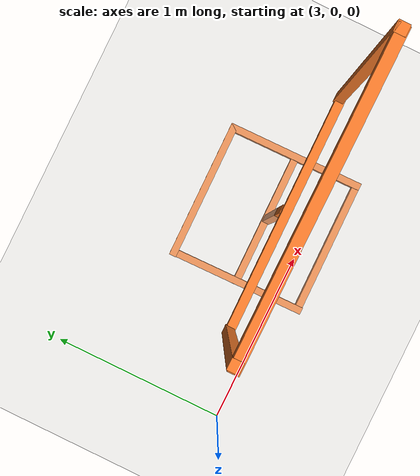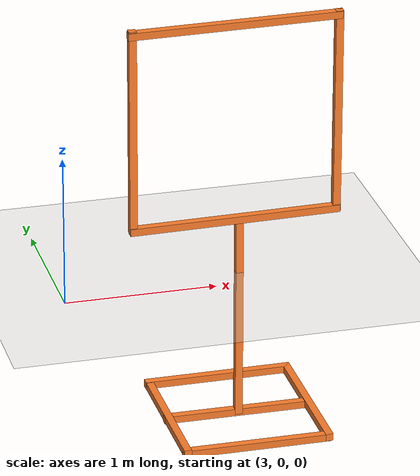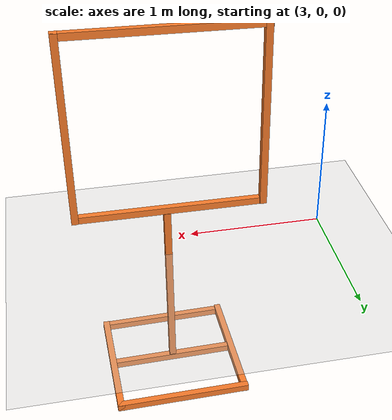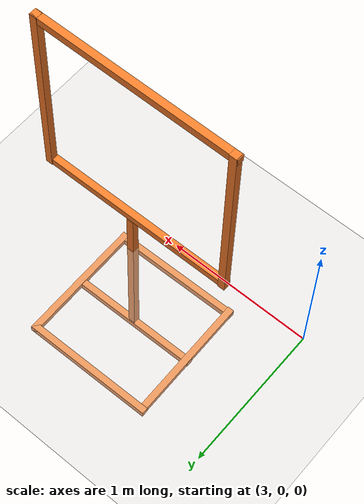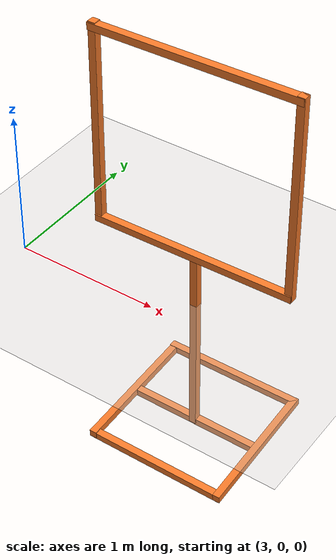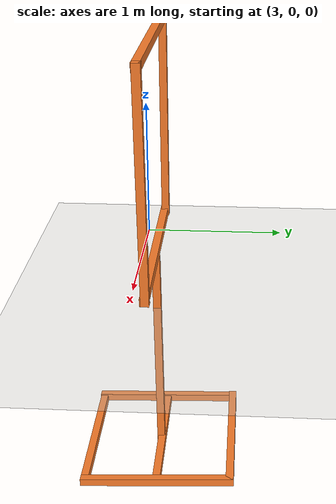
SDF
<sdf version="1.6">
 <world name="default">
  <model name="ground_plane">
   <static>1</static>
   <link name="link">
    <collision name="collision">
     <geometry><plane><normal>0 0 1</normal><size>100 100</size></plane></geometry>
     <surface><friction><ode><mu>100</mu><mu2>50</mu2></ode></friction></surface>
    </collision>
    <visual name="visual">
     <cast_shadows>0</cast_shadows>
     <geometry><plane><normal>0 0 1</normal><size>100 100</size></plane></geometry>
     <material>
      <script><uri>file://media/materials/scripts/gazebo.material</uri><name>Gazebo/Grey</name></script>
     </material>
    </visual>
    <velocity_decay><linear>0</linear><angular>0</angular></velocity_decay>
   </link>
  </model>
  <model name="closed_gate_clone">
   <link name="link">
    <inertial>
     <mass>1</mass>
     <inertia>
      <ixx>0.166667</ixx>
      <ixy>0</ixy>
      <ixz>0</ixz>
      <iyy>0.166667</iyy>
      <iyz>0</iyz>
      <izz>0.166667</izz>
     </inertia>
    </inertial>
    <pose>0.404756 -0.715724 1.41623 0 -0 0</pose>
    <visual name="visual">
     <geometry><box><size>0.05 0.05 1.4</size></box></geometry>
     <material>
      <script><name>Gazebo/Grey</name><uri>file://media/materials/scripts/gazebo.material</uri></script>
      <shader type="vertex"><normal_map>__default__</normal_map></shader>
      <ambient>0.976 0.484 0.164 1</ambient>
      <diffuse>0.976 0.484 0.164 1</diffuse>
      <specular>0.01 0.01 0.01 1</specular>
      <emissive>0 0 0 1</emissive>
     </material>
    </visual>
    <collision name="collision">
     <geometry><box><size>0.05 0.05 1.4</size></box></geometry>
     <surface>
      <friction>
       <ode><mu>1</mu><mu2>1</mu2><fdir1>0 0 0</fdir1><slip1>0</slip1><slip2>0</slip2></ode>
       <torsional>
        <coefficient>1</coefficient>
        <patch_radius>0</patch_radius>
        <surface_radius>0</surface_radius>
        <use_patch_radius>1</use_patch_radius>
        <ode><slip>0</slip></ode>
       </torsional>
      </friction>
      <bounce><restitution_coefficient>0</restitution_coefficient><threshold>1e+06</threshold></bounce>
      <contact>
       <collide_without_contact>0</collide_without_contact>
       <collide_without_contact_bitmask>1</collide_without_contact_bitmask>
       <collide_bitmask>1</collide_bitmask>
       <ode>
        <soft_cfm>0</soft_cfm>
        <soft_erp>0.2</soft_erp>
        <kp>1e+13</kp>
        <kd>1</kd>
        <max_vel>0.01</max_vel>
        <min_depth>0</min_depth>
       </ode>
       <bullet>
        <split_impulse>1</split_impulse>
        <split_impulse_penetration_threshold>-0.01</split_impulse_penetration_threshold>
        <soft_cfm>0</soft_cfm>
        <soft_erp>0.2</soft_erp>
        <kp>1e+13</kp>
        <kd>1</kd>
       </bullet>
      </contact>
     </surface>
    </collision>
   </link>
   <link name="link_clone_0_clone_0">
    <inertial>
     <mass>1</mass>
     <inertia>
      <ixx>0.166667</ixx>
      <ixy>0</ixy>
      <ixz>0</ixz>
      <iyy>0.166667</iyy>
      <iyz>0</iyz>
      <izz>0.166667</izz>
     </inertia>
    </inertial>
    <pose>1.11096 -0.693594 -0.667388 -1.57955 0.044957 -1.56415</pose>
    <visual name="visual">
     <geometry><box><size>0.05 0.05 1</size></box></geometry>
     <material>
      <script><name>Gazebo/Grey</name><uri>file://media/materials/scripts/gazebo.material</uri></script>
      <shader type="vertex"><normal_map>__default__</normal_map></shader>
      <ambient>0.976 0.484 0.164 1</ambient>
      <diffuse>0.976 0.484 0.164 1</diffuse>
      <specular>0.01 0.01 0.01 1</specular>
      <emissive>0 0 0 1</emissive>
     </material>
    </visual>
    <collision name="collision">
     <geometry><box><size>0.05 0.05 1</size></box></geometry>
     <surface>
      <friction>
       <ode><mu>1</mu><mu2>1</mu2><fdir1>0 0 0</fdir1><slip1>0</slip1><slip2>0</slip2></ode>
       <torsional>
        <coefficient>1</coefficient>
        <patch_radius>0</patch_radius>
        <surface_radius>0</surface_radius>
        <use_patch_radius>1</use_patch_radius>
        <ode><slip>0</slip></ode>
       </torsional>
      </friction>
      <bounce><restitution_coefficient>0</restitution_coefficient><threshold>1e+06</threshold></bounce>
      <contact>
       <collide_without_contact>0</collide_without_contact>
       <collide_without_contact_bitmask>1</collide_without_contact_bitmask>
       <collide_bitmask>1</collide_bitmask>
       <ode>
        <soft_cfm>0</soft_cfm>
        <soft_erp>0.2</soft_erp>
        <kp>1e+13</kp>
        <kd>1</kd>
        <max_vel>0.01</max_vel>
        <min_depth>0</min_depth>
       </ode>
       <bullet>
        <split_impulse>1</split_impulse>
        <split_impulse_penetration_threshold>-0.01</split_impulse_penetration_threshold>
        <soft_cfm>0</soft_cfm>
        <soft_erp>0.2</soft_erp>
        <kp>1e+13</kp>
        <kd>1</kd>
       </bullet>
      </contact>
     </surface>
    </collision>
   </link>
   <link name="link_clone_0_clone_0_clone">
    <inertial>
     <mass>1</mass>
     <inertia>
      <ixx>0.166667</ixx>
      <ixy>0</ixy>
      <ixz>0</ixz>
      <iyy>0.166667</iyy>
      <iyz>0</iyz>
      <izz>0.166667</izz>
     </inertia>
    </inertial>
    <pose>0.637485 -0.695511 -0.656732 -1.55146 -0.019345 0.017432</pose>
    <visual name="visual">
     <geometry><box><size>0.05 0.05 1</size></box></geometry>
     <material>
      <script><name>Gazebo/Grey</name><uri>file://media/materials/scripts/gazebo.material</uri></script>
      <shader type="vertex"><normal_map>__default__</normal_map></shader>
      <ambient>0.976 0.484 0.164 1</ambient>
      <diffuse>0.976 0.484 0.164 1</diffuse>
      <specular>0.01 0.01 0.01 1</specular>
      <emissive>0 0 0 1</emissive>
     </material>
    </visual>
    <collision name="collision">
     <geometry><box><size>0.05 0.05 1</size></box></geometry>
     <surface>
      <friction>
       <ode><mu>1</mu><mu2>1</mu2><fdir1>0 0 0</fdir1><slip1>0</slip1><slip2>0</slip2></ode>
       <torsional>
        <coefficient>1</coefficient>
        <patch_radius>0</patch_radius>
        <surface_radius>0</surface_radius>
        <use_patch_radius>1</use_patch_radius>
        <ode><slip>0</slip></ode>
       </torsional>
      </friction>
      <bounce><restitution_coefficient>0</restitution_coefficient><threshold>1e+06</threshold></bounce>
      <contact>
       <collide_without_contact>0</collide_without_contact>
       <collide_without_contact_bitmask>1</collide_without_contact_bitmask>
       <collide_bitmask>1</collide_bitmask>
       <ode>
        <soft_cfm>0</soft_cfm>
        <soft_erp>0.2</soft_erp>
        <kp>1e+13</kp>
        <kd>1</kd>
        <max_vel>0.01</max_vel>
        <min_depth>0</min_depth>
       </ode>
       <bullet>
        <split_impulse>1</split_impulse>
        <split_impulse_penetration_threshold>-0.01</split_impulse_penetration_threshold>
        <soft_cfm>0</soft_cfm>
        <soft_erp>0.2</soft_erp>
        <kp>1e+13</kp>
        <kd>1</kd>
       </bullet>
      </contact>
     </surface>
    </collision>
   </link>
   <link name="link_clone_0_clone_0_clone_0">
    <inertial>
     <mass>1</mass>
     <inertia>
      <ixx>0.166667</ixx>
      <ixy>0</ixy>
      <ixz>0</ixz>
      <iyy>0.166667</iyy>
      <iyz>0</iyz>
      <izz>0.166667</izz>
     </inertia>
    </inertial>
    <pose>1.12077 -1.16283 -0.677317 -1.57839 0.053451 -1.56287</pose>
    <visual name="visual">
     <geometry><box><size>0.05 0.05 1</size></box></geometry>
     <material>
      <script><name>Gazebo/Grey</name><uri>file://media/materials/scripts/gazebo.material</uri></script>
      <shader type="vertex"><normal_map>__default__</normal_map></shader>
      <ambient>0.976 0.484 0.164 1</ambient>
      <diffuse>0.976 0.484 0.164 1</diffuse>
      <specular>0.01 0.01 0.01 1</specular>
      <emissive>0 0 0 1</emissive>
     </material>
    </visual>
    <collision name="collision">
     <geometry><box><size>0.05 0.05 1</size></box></geometry>
     <surface>
      <friction>
       <ode><mu>1</mu><mu2>1</mu2><fdir1>0 0 0</fdir1><slip1>0</slip1><slip2>0</slip2></ode>
       <torsional>
        <coefficient>1</coefficient>
        <patch_radius>0</patch_radius>
        <surface_radius>0</surface_radius>
        <use_patch_radius>1</use_patch_radius>
        <ode><slip>0</slip></ode>
       </torsional>
      </friction>
      <bounce><restitution_coefficient>0</restitution_coefficient><threshold>1e+06</threshold></bounce>
      <contact>
       <collide_without_contact>0</collide_without_contact>
       <collide_without_contact_bitmask>1</collide_without_contact_bitmask>
       <collide_bitmask>1</collide_bitmask>
       <ode>
        <soft_cfm>0</soft_cfm>
        <soft_erp>0.2</soft_erp>
        <kp>1e+13</kp>
        <kd>1</kd>
        <max_vel>0.01</max_vel>
        <min_depth>0</min_depth>
       </ode>
       <bullet>
        <split_impulse>1</split_impulse>
        <split_impulse_penetration_threshold>-0.01</split_impulse_penetration_threshold>
        <soft_cfm>0</soft_cfm>
        <soft_erp>0.2</soft_erp>
        <kp>1e+13</kp>
        <kd>1</kd>
       </bullet>
      </contact>
     </surface>
    </collision>
   </link>
   <link name="link_clone_0_clone_0_clone_2">
    <inertial>
     <mass>1</mass>
     <inertia>
      <ixx>0.166667</ixx>
      <ixy>0</ixy>
      <ixz>0</ixz>
      <iyy>0.166667</iyy>
      <iyz>0</iyz>
      <izz>0.166667</izz>
     </inertia>
    </inertial>
    <pose>1.10088 -0.214462 -0.645898 -1.57451 0.053447 -1.56287</pose>
    <visual name="visual">
     <geometry><box><size>0.05 0.05 1</size></box></geometry>
     <material>
      <script><name>Gazebo/Grey</name><uri>file://media/materials/scripts/gazebo.material</uri></script>
      <shader type="vertex"><normal_map>__default__</normal_map></shader>
      <ambient>0.976 0.484 0.164 1</ambient>
      <diffuse>0.976 0.484 0.164 1</diffuse>
      <specular>0.01 0.01 0.01 1</specular>
      <emissive>0 0 0 1</emissive>
     </material>
    </visual>
    <collision name="collision">
     <geometry><box><size>0.05 0.05 1</size></box></geometry>
     <surface>
      <friction>
       <ode><mu>1</mu><mu2>1</mu2><fdir1>0 0 0</fdir1><slip1>0</slip1><slip2>0</slip2></ode>
       <torsional>
        <coefficient>1</coefficient>
        <patch_radius>0</patch_radius>
        <surface_radius>0</surface_radius>
        <use_patch_radius>1</use_patch_radius>
        <ode><slip>0</slip></ode>
       </torsional>
      </friction>
      <bounce><restitution_coefficient>0</restitution_coefficient><threshold>1e+06</threshold></bounce>
      <contact>
       <collide_without_contact>0</collide_without_contact>
       <collide_without_contact_bitmask>1</collide_without_contact_bitmask>
       <collide_bitmask>1</collide_bitmask>
       <ode>
        <soft_cfm>0</soft_cfm>
        <soft_erp>0.2</soft_erp>
        <kp>1e+13</kp>
        <kd>1</kd>
        <max_vel>0.01</max_vel>
        <min_depth>0</min_depth>
       </ode>
       <bullet>
        <split_impulse>1</split_impulse>
        <split_impulse_penetration_threshold>-0.01</split_impulse_penetration_threshold>
        <soft_cfm>0</soft_cfm>
        <soft_erp>0.2</soft_erp>
        <kp>1e+13</kp>
        <kd>1</kd>
       </bullet>
      </contact>
     </surface>
    </collision>
   </link>
   <link name="link_clone_0_clone_0_clone_clone">
    <inertial>
     <mass>1</mass>
     <inertia>
      <ixx>0.166667</ixx>
      <ixy>0</ixy>
      <ixz>0</ixz>
      <iyy>0.166667</iyy>
      <iyz>0</iyz>
      <izz>0.166667</izz>
     </inertia>
    </inertial>
    <pose>1.59453 -0.684923 -0.663241 -1.53838 -0.023075 0.018345</pose>
    <visual name="visual">
     <geometry><box><size>0.05 0.05 1</size></box></geometry>
     <material>
      <script><name>Gazebo/Grey</name><uri>file://media/materials/scripts/gazebo.material</uri></script>
      <shader type="vertex"><normal_map>__default__</normal_map></shader>
      <ambient>0.976 0.484 0.164 1</ambient>
      <diffuse>0.976 0.484 0.164 1</diffuse>
      <specular>0.01 0.01 0.01 1</specular>
      <emissive>0 0 0 1</emissive>
     </material>
    </visual>
    <collision name="collision">
     <geometry><box><size>0.05 0.05 1</size></box></geometry>
     <surface>
      <friction>
       <ode><mu>1</mu><mu2>1</mu2><fdir1>0 0 0</fdir1><slip1>0</slip1><slip2>0</slip2></ode>
       <torsional>
        <coefficient>1</coefficient>
        <patch_radius>0</patch_radius>
        <surface_radius>0</surface_radius>
        <use_patch_radius>1</use_patch_radius>
        <ode><slip>0</slip></ode>
       </torsional>
      </friction>
      <bounce><restitution_coefficient>0</restitution_coefficient><threshold>1e+06</threshold></bounce>
      <contact>
       <collide_without_contact>0</collide_without_contact>
       <collide_without_contact_bitmask>1</collide_without_contact_bitmask>
       <collide_bitmask>1</collide_bitmask>
       <ode>
        <soft_cfm>0</soft_cfm>
        <soft_erp>0.2</soft_erp>
        <kp>1e+13</kp>
        <kd>1</kd>
        <max_vel>0.01</max_vel>
        <min_depth>0</min_depth>
       </ode>
       <bullet>
        <split_impulse>1</split_impulse>
        <split_impulse_penetration_threshold>-0.01</split_impulse_penetration_threshold>
        <soft_cfm>0</soft_cfm>
        <soft_erp>0.2</soft_erp>
        <kp>1e+13</kp>
        <kd>1</kd>
       </bullet>
      </contact>
     </surface>
    </collision>
   </link>
   <link name="link_clone_0_clone_1">
    <inertial>
     <mass>1</mass>
     <inertia>
      <ixx>0.166667</ixx>
      <ixy>0</ixy>
      <ixz>0</ixz>
      <iyy>0.166667</iyy>
      <iyz>0</iyz>
      <izz>0.166667</izz>
     </inertia>
    </inertial>
    <pose>1.08198 -0.717602 0.744079 -1.56201 0.04483 -1.56244</pose>
    <visual name="visual">
     <geometry><box><size>0.05 0.05 1.4</size></box></geometry>
     <material>
      <script><name>Gazebo/Grey</name><uri>file://media/materials/scripts/gazebo.material</uri></script>
      <shader type="vertex"><normal_map>__default__</normal_map></shader>
      <ambient>0.976 0.484 0.164 1</ambient>
      <diffuse>0.976 0.484 0.164 1</diffuse>
      <specular>0.01 0.01 0.01 1</specular>
      <emissive>0 0 0 1</emissive>
     </material>
    </visual>
    <collision name="collision">
     <geometry><box><size>0.05 0.05 1.4</size></box></geometry>
     <surface>
      <friction>
       <ode><mu>1</mu><mu2>1</mu2><fdir1>0 0 0</fdir1><slip1>0</slip1><slip2>0</slip2></ode>
       <torsional>
        <coefficient>1</coefficient>
        <patch_radius>0</patch_radius>
        <surface_radius>0</surface_radius>
        <use_patch_radius>1</use_patch_radius>
        <ode><slip>0</slip></ode>
       </torsional>
      </friction>
      <bounce><restitution_coefficient>0</restitution_coefficient><threshold>1e+06</threshold></bounce>
      <contact>
       <collide_without_contact>0</collide_without_contact>
       <collide_without_contact_bitmask>1</collide_without_contact_bitmask>
       <collide_bitmask>1</collide_bitmask>
       <ode>
        <soft_cfm>0</soft_cfm>
        <soft_erp>0.2</soft_erp>
        <kp>1e+13</kp>
        <kd>1</kd>
        <max_vel>0.01</max_vel>
        <min_depth>0</min_depth>
       </ode>
       <bullet>
        <split_impulse>1</split_impulse>
        <split_impulse_penetration_threshold>-0.01</split_impulse_penetration_threshold>
        <soft_cfm>0</soft_cfm>
        <soft_erp>0.2</soft_erp>
        <kp>1e+13</kp>
        <kd>1</kd>
       </bullet>
      </contact>
     </surface>
    </collision>
   </link>
   <link name="link_clone_0_clone_1_clone">
    <inertial>
     <mass>1</mass>
     <inertia>
      <ixx>0.166667</ixx>
      <ixy>0</ixy>
      <ixz>0</ixz>
      <iyy>0.166667</iyy>
      <iyz>0</iyz>
      <izz>0.166667</izz>
     </inertia>
    </inertial>
    <pose>1.07529 -0.719849 2.09328 -1.55888 0.053444 -1.57124</pose>
    <visual name="visual">
     <geometry><box><size>0.05 0.05 1.4</size></box></geometry>
     <material>
      <script><name>Gazebo/Grey</name><uri>file://media/materials/scripts/gazebo.material</uri></script>
      <shader type="vertex"><normal_map>__default__</normal_map></shader>
      <ambient>0.976 0.484 0.164 1</ambient>
      <diffuse>0.976 0.484 0.164 1</diffuse>
      <specular>0.01 0.01 0.01 1</specular>
      <emissive>0 0 0 1</emissive>
     </material>
    </visual>
    <collision name="collision">
     <geometry><box><size>0.05 0.05 1.4</size></box></geometry>
     <surface>
      <friction>
       <ode><mu>1</mu><mu2>1</mu2><fdir1>0 0 0</fdir1><slip1>0</slip1><slip2>0</slip2></ode>
       <torsional>
        <coefficient>1</coefficient>
        <patch_radius>0</patch_radius>
        <surface_radius>0</surface_radius>
        <use_patch_radius>1</use_patch_radius>
        <ode><slip>0</slip></ode>
       </torsional>
      </friction>
      <bounce><restitution_coefficient>0</restitution_coefficient><threshold>1e+06</threshold></bounce>
      <contact>
       <collide_without_contact>0</collide_without_contact>
       <collide_without_contact_bitmask>1</collide_without_contact_bitmask>
       <collide_bitmask>1</collide_bitmask>
       <ode>
        <soft_cfm>0</soft_cfm>
        <soft_erp>0.2</soft_erp>
        <kp>1e+13</kp>
        <kd>1</kd>
        <max_vel>0.01</max_vel>
        <min_depth>0</min_depth>
       </ode>
       <bullet>
        <split_impulse>1</split_impulse>
        <split_impulse_penetration_threshold>-0.01</split_impulse_penetration_threshold>
        <soft_cfm>0</soft_cfm>
        <soft_erp>0.2</soft_erp>
        <kp>1e+13</kp>
        <kd>1</kd>
       </bullet>
      </contact>
     </surface>
    </collision>
   </link>
   <link name="link_clone_1">
    <inertial>
     <mass>1</mass>
     <inertia>
      <ixx>0.166667</ixx>
      <ixy>0</ixy>
      <ixz>0</ixz>
      <iyy>0.166667</iyy>
      <iyz>0</iyz>
      <izz>0.166667</izz>
     </inertia>
    </inertial>
    <pose>1.11167 -0.706269 0.02254 0.008527 -0.003582 0.001077</pose>
    <visual name="visual">
     <geometry><box><size>0.05 0.05 1.4</size></box></geometry>
     <material>
      <script><name>Gazebo/Grey</name><uri>file://media/materials/scripts/gazebo.material</uri></script>
      <shader type="vertex"><normal_map>__default__</normal_map></shader>
      <ambient>0.976 0.484 0.164 1</ambient>
      <diffuse>0.976 0.484 0.164 1</diffuse>
      <specular>0.01 0.01 0.01 1</specular>
      <emissive>0 0 0 1</emissive>
     </material>
    </visual>
    <collision name="collision">
     <geometry><box><size>0.05 0.05 1.4</size></box></geometry>
     <surface>
      <friction>
       <ode><mu>1</mu><mu2>1</mu2><fdir1>0 0 0</fdir1><slip1>0</slip1><slip2>0</slip2></ode>
       <torsional>
        <coefficient>1</coefficient>
        <patch_radius>0</patch_radius>
        <surface_radius>0</surface_radius>
        <use_patch_radius>1</use_patch_radius>
        <ode><slip>0</slip></ode>
       </torsional>
      </friction>
      <bounce><restitution_coefficient>0</restitution_coefficient><threshold>1e+06</threshold></bounce>
      <contact>
       <collide_without_contact>0</collide_without_contact>
       <collide_without_contact_bitmask>1</collide_without_contact_bitmask>
       <collide_bitmask>1</collide_bitmask>
       <ode>
        <soft_cfm>0</soft_cfm>
        <soft_erp>0.2</soft_erp>
        <kp>1e+13</kp>
        <kd>1</kd>
        <max_vel>0.01</max_vel>
        <min_depth>0</min_depth>
       </ode>
       <bullet>
        <split_impulse>1</split_impulse>
        <split_impulse_penetration_threshold>-0.01</split_impulse_penetration_threshold>
        <soft_cfm>0</soft_cfm>
        <soft_erp>0.2</soft_erp>
        <kp>1e+13</kp>
        <kd>1</kd>
       </bullet>
      </contact>
     </surface>
    </collision>
   </link>
   <link name="link_clone_7">
    <inertial>
     <mass>1</mass>
     <inertia>
      <ixx>0.166667</ixx>
      <ixy>0</ixy>
      <ixz>0</ixz>
      <iyy>0.166667</iyy>
      <iyz>0</iyz>
      <izz>0.166667</izz>
     </inertia>
    </inertial>
    <pose>1.75876 -0.711707 1.42733 0.008527 -0.003582 0.001077</pose>
    <visual name="visual">
     <geometry><box><size>0.05 0.05 1.4</size></box></geometry>
     <material>
      <script><name>Gazebo/Grey</name><uri>file://media/materials/scripts/gazebo.material</uri></script>
      <shader type="vertex"><normal_map>__default__</normal_map></shader>
      <ambient>0.976 0.484 0.164 1</ambient>
      <diffuse>0.976 0.484 0.164 1</diffuse>
      <specular>0.01 0.01 0.01 1</specular>
      <emissive>0 0 0 1</emissive>
     </material>
    </visual>
    <collision name="collision">
     <geometry><box><size>0.05 0.05 1.4</size></box></geometry>
     <surface>
      <friction>
       <ode><mu>1</mu><mu2>1</mu2><fdir1>0 0 0</fdir1><slip1>0</slip1><slip2>0</slip2></ode>
       <torsional>
        <coefficient>1</coefficient>
        <patch_radius>0</patch_radius>
        <surface_radius>0</surface_radius>
        <use_patch_radius>1</use_patch_radius>
        <ode><slip>0</slip></ode>
       </torsional>
      </friction>
      <bounce><restitution_coefficient>0</restitution_coefficient><threshold>1e+06</threshold></bounce>
      <contact>
       <collide_without_contact>0</collide_without_contact>
       <collide_without_contact_bitmask>1</collide_without_contact_bitmask>
       <collide_bitmask>1</collide_bitmask>
       <ode>
        <soft_cfm>0</soft_cfm>
        <soft_erp>0.2</soft_erp>
        <kp>1e+13</kp>
        <kd>1</kd>
        <max_vel>0.01</max_vel>
        <min_depth>0</min_depth>
       </ode>
       <bullet>
        <split_impulse>1</split_impulse>
        <split_impulse_penetration_threshold>-0.01</split_impulse_penetration_threshold>
        <soft_cfm>0</soft_cfm>
        <soft_erp>0.2</soft_erp>
        <kp>1e+13</kp>
        <kd>1</kd>
       </bullet>
      </contact>
     </surface>
    </collision>
   </link>
   <static>1</static>
   <pose>3.0906 0.896031 -0.36646 0 -0 0</pose>
  </model>
 </world>
</sdf>
